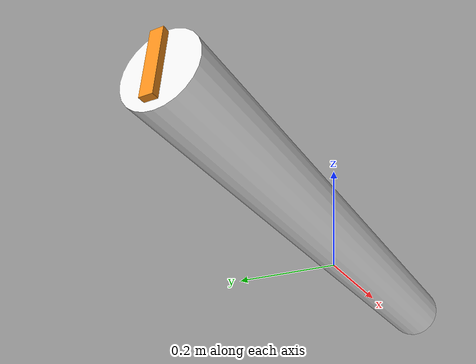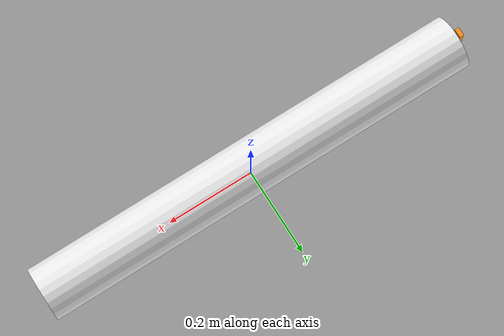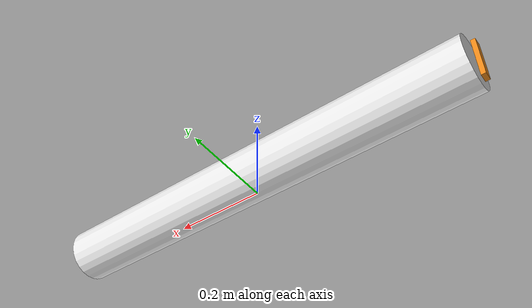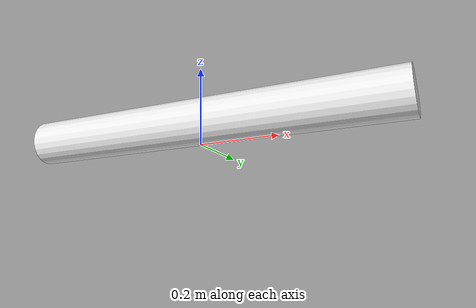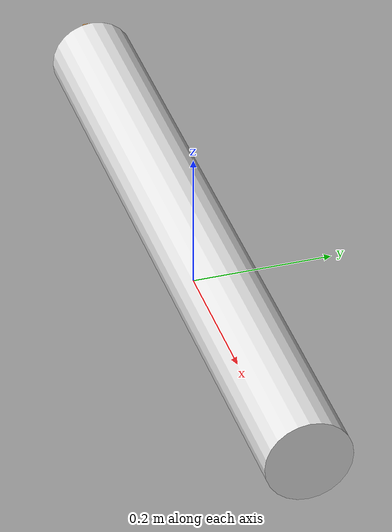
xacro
<?xml version="1.0"?>
<robot xmlns:xacro="http://www.ros.org/wiki/xacro">

    <xacro:property name="base_length" value="1.0" />
    <xacro:property name="base_radius" value="0.06" />
    <xacro:property name="blade_full_length" value="0.1" />
    <xacro:property name="blade_width" value="0.02" />
    <xacro:property name="blade_height" value="0.01" />

    <link name="base_footprint" />

    <joint name="base_joint" type="fixed">
        <parent link="base_footprint" />
        <child link="base_link" />
        <origin xyz="0 0 ${base_radius}" rpy="0 0 0" />
    </joint>

    <link name="base_link">
        <visual>
            <origin xyz="0 0 0" rpy="0 ${pi/2} 0" />
            <geometry>
                <cylinder radius="${base_radius}" length="${base_length}" />
            </geometry>
            <material name="white" />
        </visual>
        <collision>
            <geometry>
                <cylinder radius="${base_radius}" length="${base_length}" />
            </geometry>
            <origin xyz="0 0 0" rpy="0 ${pi/2} 0" />
        </collision>
        <xacro:cylinder_inertia m="5.0" r="${base_radius}" l="${base_length}"
            o_xyz="0 0 0" o_rpy="0 ${pi/2} 0" />
    </link>

    <joint name="propeller_joint" type="continuous">
        <parent link="base_link" />
        <child link="propeller" />
        <origin xyz="-0.51 0 0" rpy="0 ${pi/2} 0" />
        <axis xyz="0 0 1" />
    </joint>

    <link name="propeller">
        <visual>
            <geometry>
                <box size="${blade_full_length} ${blade_width} ${blade_height}" />
            </geometry>
            <material name="orange" />
            <origin xyz="0 0 0" rpy="0 0 0" />
        </visual>
        <collision>
            <geometry>
                <box size="${blade_full_length} ${blade_width} ${blade_height}" />
            </geometry>
            <origin xyz="0 0 0" rpy="0 0 0" />
        </collision>
        <xacro:box_inertia m="0.02" x="${blade_full_length}" y="${blade_width}" z="${blade_height}"
            o_xyz="0 0 0" o_rpy="0 0 0" />
    </link>

</robot>
